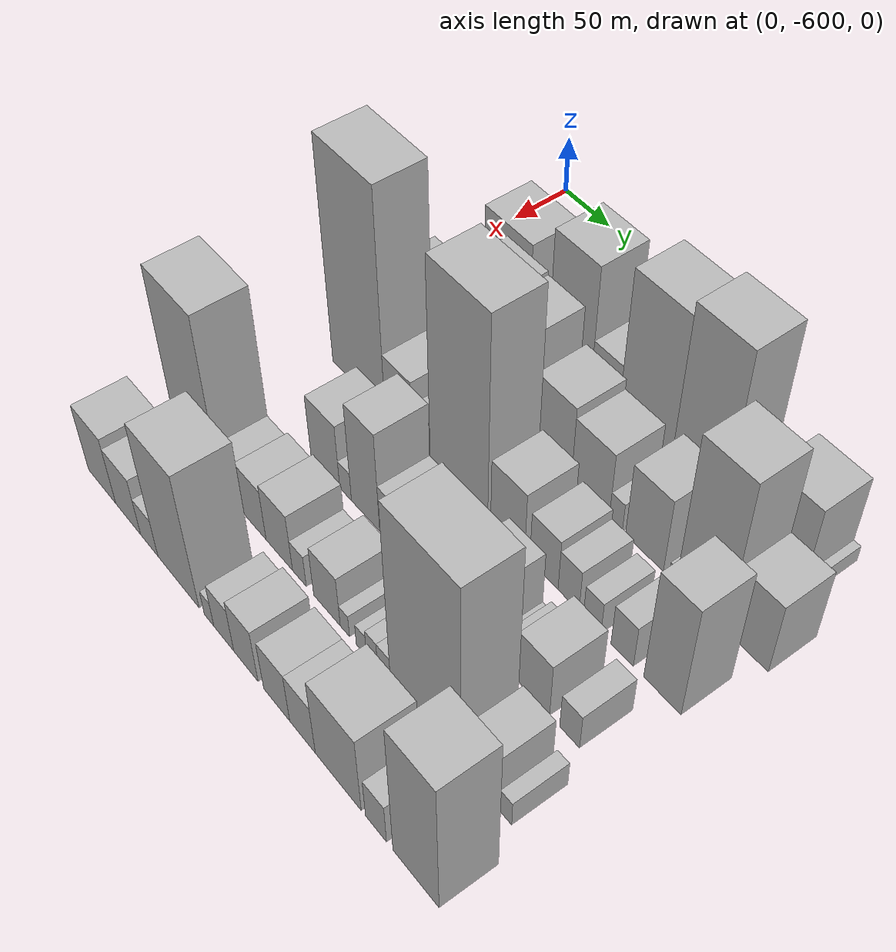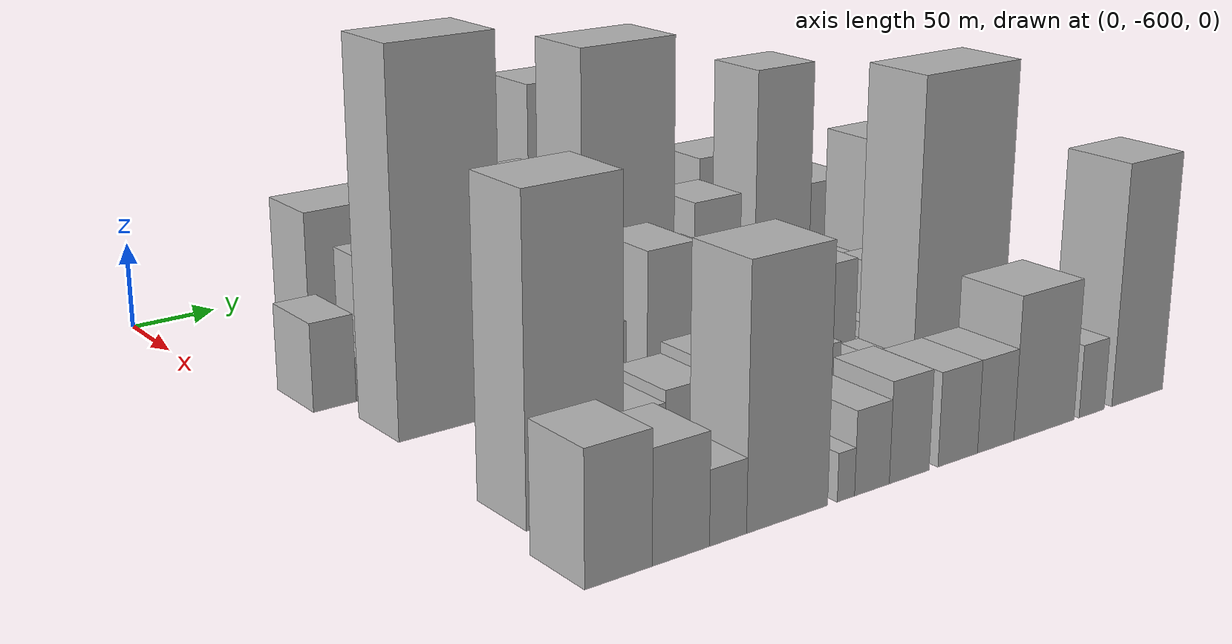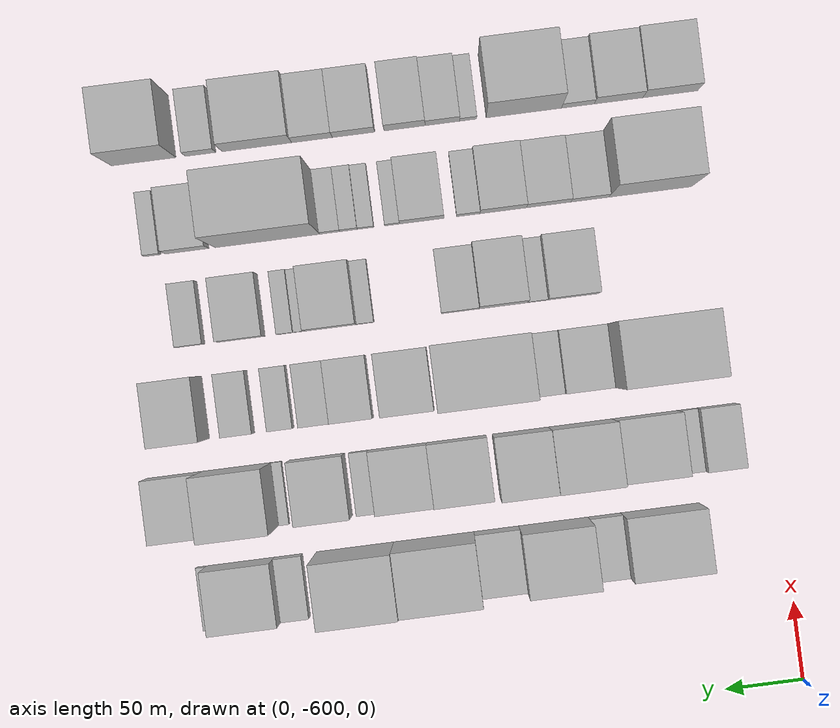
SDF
<sdf version="1.6">
 <world name="default">
  <model name="building_14">
   <static>1</static>
   <pose>100.0000 -523.1543 0 0.000000 0.000000 0.000000</pose>
   <link name="link">
    <pose>0 0 43.50 0 0 0</pose>
    <collision name="collision"><geometry><box><size>40.0000 50.3562 87.0000</size></box></geometry></collision>
    <visual name="visual">
     <cast_shadows>0</cast_shadows>
     <geometry><box><size>40.0000 50.3562 87.0000</size></box></geometry>
     <material>
      <script>
       <uri>model://HANNAS_wall/materials/scripts</uri>
       <uri>model://HANNAS_wall/materials/textures</uri>
       <name>vrc/HANNAS_wall</name>
      </script>
     </material>
    </visual>
   </link>
  </model>
  <model name="building_15">
   <static>1</static>
   <pose>100.0000 -487.5639 0 0.000000 0.000000 0.000000</pose>
   <link name="link">
    <pose>0 0 18.00 0 0 0</pose>
    <collision name="collision"><geometry><box><size>40.0000 20.8247 36.0000</size></box></geometry></collision>
    <visual name="visual">
     <cast_shadows>0</cast_shadows>
     <geometry><box><size>40.0000 20.8247 36.0000</size></box></geometry>
     <material>
      <script>
       <uri>model://HANNAS_wall/materials/scripts</uri>
       <uri>model://HANNAS_wall/materials/textures</uri>
       <name>vrc/HANNAS_wall</name>
      </script>
     </material>
    </visual>
   </link>
  </model>
  <model name="building_16">
   <static>1</static>
   <pose>100.0000 -454.9378 0 0.000000 0.000000 0.000000</pose>
   <link name="link">
    <pose>0 0 58.50 0 0 0</pose>
    <collision name="collision"><geometry><box><size>40.0000 44.4276 117.0000</size></box></geometry></collision>
    <visual name="visual">
     <cast_shadows>0</cast_shadows>
     <geometry><box><size>40.0000 44.4276 117.0000</size></box></geometry>
     <material>
      <script>
       <uri>model://HANNAS_wall/materials/scripts</uri>
       <uri>model://HANNAS_wall/materials/textures</uri>
       <name>vrc/HANNAS_wall</name>
      </script>
     </material>
    </visual>
   </link>
  </model>
  <model name="building_17">
   <static>1</static>
   <pose>100.0000 -418.4391 0 0.000000 0.000000 0.000000</pose>
   <link name="link">
    <pose>0 0 25.50 0 0 0</pose>
    <collision name="collision"><geometry><box><size>40.0000 28.5699 51.0000</size></box></geometry></collision>
    <visual name="visual">
     <cast_shadows>0</cast_shadows>
     <geometry><box><size>40.0000 28.5699 51.0000</size></box></geometry>
     <material>
      <script>
       <uri>model://HANNAS_wall/materials/scripts</uri>
       <uri>model://HANNAS_wall/materials/textures</uri>
       <name>vrc/HANNAS_wall</name>
      </script>
     </material>
    </visual>
   </link>
  </model>
  <model name="building_18">
   <static>1</static>
   <pose>100.0000 -378.4617 0 0.000000 0.000000 0.000000</pose>
   <link name="link">
    <pose>0 0 69.00 0 0 0</pose>
    <collision name="collision"><geometry><box><size>40.0000 51.3850 138.0000</size></box></geometry></collision>
    <visual name="visual">
     <cast_shadows>0</cast_shadows>
     <geometry><box><size>40.0000 51.3850 138.0000</size></box></geometry>
     <material>
      <script>
       <uri>model://HANNAS_wall/materials/scripts</uri>
       <uri>model://HANNAS_wall/materials/textures</uri>
       <name>vrc/HANNAS_wall</name>
      </script>
     </material>
    </visual>
   </link>
  </model>
  <model name="building_19">
   <static>1</static>
   <pose>100.0000 -328.0284 0 0.000000 0.000000 0.000000</pose>
   <link name="link">
    <pose>0 0 75.00 0 0 0</pose>
    <collision name="collision"><geometry><box><size>40.0000 49.4816 150.0000</size></box></geometry></collision>
    <visual name="visual">
     <cast_shadows>0</cast_shadows>
     <geometry><box><size>40.0000 49.4816 150.0000</size></box></geometry>
     <material>
      <script>
       <uri>model://HANNAS_wall/materials/scripts</uri>
       <uri>model://HANNAS_wall/materials/textures</uri>
       <name>vrc/HANNAS_wall</name>
      </script>
     </material>
    </visual>
   </link>
  </model>
  <model name="building_20">
   <static>1</static>
   <pose>100.0000 -285.3408 0 0.000000 0.000000 0.000000</pose>
   <link name="link">
    <pose>0 0 15.00 0 0 0</pose>
    <collision name="collision"><geometry><box><size>40.0000 17.8934 30.0000</size></box></geometry></collision>
    <visual name="visual">
     <cast_shadows>0</cast_shadows>
     <geometry><box><size>40.0000 17.8934 30.0000</size></box></geometry>
     <material>
      <script>
       <uri>model://HANNAS_wall/materials/scripts</uri>
       <uri>model://HANNAS_wall/materials/textures</uri>
       <name>vrc/HANNAS_wall</name>
      </script>
     </material>
    </visual>
   </link>
  </model>
  <model name="building_21">
   <static>1</static>
   <pose>100.0000 -254.5551 0 0.000000 0.000000 0.000000</pose>
   <link name="link">
    <pose>0 0 37.50 0 0 0</pose>
    <collision name="collision"><geometry><box><size>40.0000 43.6780 75.0000</size></box></geometry></collision>
    <visual name="visual">
     <cast_shadows>0</cast_shadows>
     <geometry><box><size>40.0000 43.6780 75.0000</size></box></geometry>
     <material>
      <script>
       <uri>model://HANNAS_wall/materials/scripts</uri>
       <uri>model://HANNAS_wall/materials/textures</uri>
       <name>vrc/HANNAS_wall</name>
      </script>
     </material>
    </visual>
   </link>
  </model>
  <model name="building_22">
   <static>1</static>
   <pose>100.0000 -229.6070 0 0.000000 0.000000 0.000000</pose>
   <link name="link">
    <pose>0 0 7.50 0 0 0</pose>
    <collision name="collision"><geometry><box><size>40.0000 6.2183 15.0000</size></box></geometry></collision>
    <visual name="visual">
     <cast_shadows>0</cast_shadows>
     <geometry><box><size>40.0000 6.2183 15.0000</size></box></geometry>
     <material>
      <script>
       <uri>model://HANNAS_wall/materials/scripts</uri>
       <uri>model://HANNAS_wall/materials/textures</uri>
       <name>vrc/HANNAS_wall</name>
      </script>
     </material>
    </visual>
   </link>
  </model>
  <model name="building_63">
   <static>1</static>
   <pose>160.0000 -566.2670 0 0.000000 0.000000 0.000000</pose>
   <link name="link">
    <pose>0 0 24.00 0 0 0</pose>
    <collision name="collision"><geometry><box><size>40.0000 24.8563 48.0000</size></box></geometry></collision>
    <visual name="visual">
     <cast_shadows>0</cast_shadows>
     <geometry><box><size>40.0000 24.8563 48.0000</size></box></geometry>
     <material>
      <script>
       <uri>model://HANNAS_wall/materials/scripts</uri>
       <uri>model://HANNAS_wall/materials/textures</uri>
       <name>vrc/HANNAS_wall</name>
      </script>
     </material>
    </visual>
   </link>
  </model>
  <model name="building_64">
   <static>1</static>
   <pose>160.0000 -547.9130 0 0.000000 0.000000 0.000000</pose>
   <link name="link">
    <pose>0 0 12.00 0 0 0</pose>
    <collision name="collision"><geometry><box><size>40.0000 11.8517 24.0000</size></box></geometry></collision>
    <visual name="visual">
     <cast_shadows>0</cast_shadows>
     <geometry><box><size>40.0000 11.8517 24.0000</size></box></geometry>
     <material>
      <script>
       <uri>model://HANNAS_wall/materials/scripts</uri>
       <uri>model://HANNAS_wall/materials/textures</uri>
       <name>vrc/HANNAS_wall</name>
      </script>
     </material>
    </visual>
   </link>
  </model>
  <model name="building_65">
   <static>1</static>
   <pose>160.0000 -521.0519 0 0.000000 0.000000 0.000000</pose>
   <link name="link">
    <pose>0 0 36.00 0 0 0</pose>
    <collision name="collision"><geometry><box><size>40.0000 41.8705 72.0000</size></box></geometry></collision>
    <visual name="visual">
     <cast_shadows>0</cast_shadows>
     <geometry><box><size>40.0000 41.8705 72.0000</size></box></geometry>
     <material>
      <script>
       <uri>model://HANNAS_wall/materials/scripts</uri>
       <uri>model://HANNAS_wall/materials/textures</uri>
       <name>vrc/HANNAS_wall</name>
      </script>
     </material>
    </visual>
   </link>
  </model>
  <model name="building_66">
   <static>1</static>
   <pose>160.0000 -479.6305 0 0.000000 0.000000 0.000000</pose>
   <link name="link">
    <pose>0 0 52.50 0 0 0</pose>
    <collision name="collision"><geometry><box><size>40.0000 40.9723 105.0000</size></box></geometry></collision>
    <visual name="visual">
     <cast_shadows>0</cast_shadows>
     <geometry><box><size>40.0000 40.9723 105.0000</size></box></geometry>
     <material>
      <script>
       <uri>model://HANNAS_wall/materials/scripts</uri>
       <uri>model://HANNAS_wall/materials/textures</uri>
       <name>vrc/HANNAS_wall</name>
      </script>
     </material>
    </visual>
   </link>
  </model>
  <model name="building_67">
   <static>1</static>
   <pose>160.0000 -441.2628 0 0.000000 0.000000 0.000000</pose>
   <link name="link">
    <pose>0 0 51.00 0 0 0</pose>
    <collision name="collision"><geometry><box><size>40.0000 35.7630 102.0000</size></box></geometry></collision>
    <visual name="visual">
     <cast_shadows>0</cast_shadows>
     <geometry><box><size>40.0000 35.7630 102.0000</size></box></geometry>
     <material>
      <script>
       <uri>model://HANNAS_wall/materials/scripts</uri>
       <uri>model://HANNAS_wall/materials/textures</uri>
       <name>vrc/HANNAS_wall</name>
      </script>
     </material>
    </visual>
   </link>
  </model>
  <model name="building_68">
   <static>1</static>
   <pose>160.0000 -400.4322 0 0.000000 0.000000 0.000000</pose>
   <link name="link">
    <pose>0 0 36.00 0 0 0</pose>
    <collision name="collision"><geometry><box><size>40.0000 37.8983 72.0000</size></box></geometry></collision>
    <visual name="visual">
     <cast_shadows>0</cast_shadows>
     <geometry><box><size>40.0000 37.8983 72.0000</size></box></geometry>
     <material>
      <script>
       <uri>model://HANNAS_wall/materials/scripts</uri>
       <uri>model://HANNAS_wall/materials/textures</uri>
       <name>vrc/HANNAS_wall</name>
      </script>
     </material>
    </visual>
   </link>
  </model>
  <model name="building_69">
   <static>1</static>
   <pose>160.0000 -362.9718 0 0.000000 0.000000 0.000000</pose>
   <link name="link">
    <pose>0 0 31.50 0 0 0</pose>
    <collision name="collision"><geometry><box><size>40.0000 37.0224 63.0000</size></box></geometry></collision>
    <visual name="visual">
     <cast_shadows>0</cast_shadows>
     <geometry><box><size>40.0000 37.0224 63.0000</size></box></geometry>
     <material>
      <script>
       <uri>model://HANNAS_wall/materials/scripts</uri>
       <uri>model://HANNAS_wall/materials/textures</uri>
       <name>vrc/HANNAS_wall</name>
      </script>
     </material>
    </visual>
   </link>
  </model>
  <model name="building_70">
   <static>1</static>
   <pose>160.0000 -338.1974 0 0.000000 0.000000 0.000000</pose>
   <link name="link">
    <pose>0 0 13.50 0 0 0</pose>
    <collision name="collision"><geometry><box><size>40.0000 12.5265 27.0000</size></box></geometry></collision>
    <visual name="visual">
     <cast_shadows>0</cast_shadows>
     <geometry><box><size>40.0000 12.5265 27.0000</size></box></geometry>
     <material>
      <script>
       <uri>model://HANNAS_wall/materials/scripts</uri>
       <uri>model://HANNAS_wall/materials/textures</uri>
       <name>vrc/HANNAS_wall</name>
      </script>
     </material>
    </visual>
   </link>
  </model>
  <model name="building_71">
   <static>1</static>
   <pose>160.0000 -311.3431 0 0.000000 0.000000 0.000000</pose>
   <link name="link">
    <pose>0 0 34.50 0 0 0</pose>
    <collision name="collision"><geometry><box><size>40.0000 35.1821 69.0000</size></box></geometry></collision>
    <visual name="visual">
     <cast_shadows>0</cast_shadows>
     <geometry><box><size>40.0000 35.1821 69.0000</size></box></geometry>
     <material>
      <script>
       <uri>model://HANNAS_wall/materials/scripts</uri>
       <uri>model://HANNAS_wall/materials/textures</uri>
       <name>vrc/HANNAS_wall</name>
      </script>
     </material>
    </visual>
   </link>
  </model>
  <model name="building_72">
   <static>1</static>
   <pose>160.0000 -285.5102 0 0.000000 0.000000 0.000000</pose>
   <link name="link">
    <pose>0 0 7.50 0 0 0</pose>
    <collision name="collision"><geometry><box><size>40.0000 6.4837 15.0000</size></box></geometry></collision>
    <visual name="visual">
     <cast_shadows>0</cast_shadows>
     <geometry><box><size>40.0000 6.4837 15.0000</size></box></geometry>
     <material>
      <script>
       <uri>model://HANNAS_wall/materials/scripts</uri>
       <uri>model://HANNAS_wall/materials/textures</uri>
       <name>vrc/HANNAS_wall</name>
      </script>
     </material>
    </visual>
   </link>
  </model>
  <model name="building_73">
   <static>1</static>
   <pose>160.0000 -260.2073 0 0.000000 0.000000 0.000000</pose>
   <link name="link">
    <pose>0 0 70.50 0 0 0</pose>
    <collision name="collision"><geometry><box><size>40.0000 44.1222 141.0000</size></box></geometry></collision>
    <visual name="visual">
     <cast_shadows>0</cast_shadows>
     <geometry><box><size>40.0000 44.1222 141.0000</size></box></geometry>
     <material>
      <script>
       <uri>model://HANNAS_wall/materials/scripts</uri>
       <uri>model://HANNAS_wall/materials/textures</uri>
       <name>vrc/HANNAS_wall</name>
      </script>
     </material>
    </visual>
   </link>
  </model>
  <model name="building_74">
   <static>1</static>
   <pose>160.0000 -220.4132 0 0.000000 0.000000 0.000000</pose>
   <link name="link">
    <pose>0 0 33.00 0 0 0</pose>
    <collision name="collision"><geometry><box><size>40.0000 35.4659 66.0000</size></box></geometry></collision>
    <visual name="visual">
     <cast_shadows>0</cast_shadows>
     <geometry><box><size>40.0000 35.4659 66.0000</size></box></geometry>
     <material>
      <script>
       <uri>model://HANNAS_wall/materials/scripts</uri>
       <uri>model://HANNAS_wall/materials/textures</uri>
       <name>vrc/HANNAS_wall</name>
      </script>
     </material>
    </visual>
   </link>
  </model>
  <model name="building_120">
   <static>1</static>
   <pose>220.0000 -533.1363 0 0.000000 0.000000 0.000000</pose>
   <link name="link">
    <pose>0 0 99.00 0 0 0</pose>
    <collision name="collision"><geometry><box><size>40.0000 60.9064 198.0000</size></box></geometry></collision>
    <visual name="visual">
     <cast_shadows>0</cast_shadows>
     <geometry><box><size>40.0000 60.9064 198.0000</size></box></geometry>
     <material>
      <script>
       <uri>model://HANNAS_wall/materials/scripts</uri>
       <uri>model://HANNAS_wall/materials/textures</uri>
       <name>vrc/HANNAS_wall</name>
      </script>
     </material>
    </visual>
   </link>
  </model>
  <model name="building_121">
   <static>1</static>
   <pose>220.0000 -487.3544 0 0.000000 0.000000 0.000000</pose>
   <link name="link">
    <pose>0 0 28.50 0 0 0</pose>
    <collision name="collision"><geometry><box><size>40.0000 30.6576 57.0000</size></box></geometry></collision>
    <visual name="visual">
     <cast_shadows>0</cast_shadows>
     <geometry><box><size>40.0000 30.6576 57.0000</size></box></geometry>
     <material>
      <script>
       <uri>model://HANNAS_wall/materials/scripts</uri>
       <uri>model://HANNAS_wall/materials/textures</uri>
       <name>vrc/HANNAS_wall</name>
      </script>
     </material>
    </visual>
   </link>
  </model>
  <model name="building_122">
   <static>1</static>
   <pose>220.0000 -462.1849 0 0.000000 0.000000 0.000000</pose>
   <link name="link">
    <pose>0 0 18.00 0 0 0</pose>
    <collision name="collision"><geometry><box><size>40.0000 19.6813 36.0000</size></box></geometry></collision>
    <visual name="visual">
     <cast_shadows>0</cast_shadows>
     <geometry><box><size>40.0000 19.6813 36.0000</size></box></geometry>
     <material>
      <script>
       <uri>model://HANNAS_wall/materials/scripts</uri>
       <uri>model://HANNAS_wall/materials/textures</uri>
       <name>vrc/HANNAS_wall</name>
      </script>
     </material>
    </visual>
   </link>
  </model>
  <model name="building_123">
   <static>1</static>
   <pose>220.0000 -422.1868 0 0.000000 0.000000 0.000000</pose>
   <link name="link">
    <pose>0 0 91.50 0 0 0</pose>
    <collision name="collision"><geometry><box><size>40.0000 60.3148 183.0000</size></box></geometry></collision>
    <visual name="visual">
     <cast_shadows>0</cast_shadows>
     <geometry><box><size>40.0000 60.3148 183.0000</size></box></geometry>
     <material>
      <script>
       <uri>model://HANNAS_wall/materials/scripts</uri>
       <uri>model://HANNAS_wall/materials/textures</uri>
       <name>vrc/HANNAS_wall</name>
      </script>
     </material>
    </visual>
   </link>
  </model>
  <model name="building_124">
   <static>1</static>
   <pose>220.0000 -372.0674 0 0.000000 0.000000 0.000000</pose>
   <link name="link">
    <pose>0 0 30.00 0 0 0</pose>
    <collision name="collision"><geometry><box><size>40.0000 33.9240 60.0000</size></box></geometry></collision>
    <visual name="visual">
     <cast_shadows>0</cast_shadows>
     <geometry><box><size>40.0000 33.9240 60.0000</size></box></geometry>
     <material>
      <script>
       <uri>model://HANNAS_wall/materials/scripts</uri>
       <uri>model://HANNAS_wall/materials/textures</uri>
       <name>vrc/HANNAS_wall</name>
      </script>
     </material>
    </visual>
   </link>
  </model>
  <model name="building_125">
   <static>1</static>
   <pose>220.0000 -336.4881 0 0.000000 0.000000 0.000000</pose>
   <link name="link">
    <pose>0 0 24.00 0 0 0</pose>
    <collision name="collision"><geometry><box><size>40.0000 27.2346 48.0000</size></box></geometry></collision>
    <visual name="visual">
     <cast_shadows>0</cast_shadows>
     <geometry><box><size>40.0000 27.2346 48.0000</size></box></geometry>
     <material>
      <script>
       <uri>model://HANNAS_wall/materials/scripts</uri>
       <uri>model://HANNAS_wall/materials/textures</uri>
       <name>vrc/HANNAS_wall</name>
      </script>
     </material>
    </visual>
   </link>
  </model>
  <model name="building_126">
   <static>1</static>
   <pose>220.0000 -313.0088 0 0.000000 0.000000 0.000000</pose>
   <link name="link">
    <pose>0 0 19.50 0 0 0</pose>
    <collision name="collision"><geometry><box><size>40.0000 19.7241 39.0000</size></box></geometry></collision>
    <visual name="visual">
     <cast_shadows>0</cast_shadows>
     <geometry><box><size>40.0000 19.7241 39.0000</size></box></geometry>
     <material>
      <script>
       <uri>model://HANNAS_wall/materials/scripts</uri>
       <uri>model://HANNAS_wall/materials/textures</uri>
       <name>vrc/HANNAS_wall</name>
      </script>
     </material>
    </visual>
   </link>
  </model>
  <model name="building_127">
   <static>1</static>
   <pose>220.0000 -291.0469 0 0.000000 0.000000 0.000000</pose>
   <link name="link">
    <pose>0 0 15.00 0 0 0</pose>
    <collision name="collision"><geometry><box><size>40.0000 16.1997 30.0000</size></box></geometry></collision>
    <visual name="visual">
     <cast_shadows>0</cast_shadows>
     <geometry><box><size>40.0000 16.1997 30.0000</size></box></geometry>
     <material>
      <script>
       <uri>model://HANNAS_wall/materials/scripts</uri>
       <uri>model://HANNAS_wall/materials/textures</uri>
       <name>vrc/HANNAS_wall</name>
      </script>
     </material>
    </visual>
   </link>
  </model>
  <model name="building_128">
   <static>1</static>
   <pose>220.0000 -263.9473 0 0.000000 0.000000 0.000000</pose>
   <link name="link">
    <pose>0 0 19.50 0 0 0</pose>
    <collision name="collision"><geometry><box><size>40.0000 19.9994 39.0000</size></box></geometry></collision>
    <visual name="visual">
     <cast_shadows>0</cast_shadows>
     <geometry><box><size>40.0000 19.9994 39.0000</size></box></geometry>
     <material>
      <script>
       <uri>model://HANNAS_wall/materials/scripts</uri>
       <uri>model://HANNAS_wall/materials/textures</uri>
       <name>vrc/HANNAS_wall</name>
      </script>
     </material>
    </visual>
   </link>
  </model>
  <model name="building_129">
   <static>1</static>
   <pose>220.0000 -228.8766 0 0.000000 0.000000 0.000000</pose>
   <link name="link">
    <pose>0 0 52.50 0 0 0</pose>
    <collision name="collision"><geometry><box><size>40.0000 32.1422 105.0000</size></box></geometry></collision>
    <visual name="visual">
     <cast_shadows>0</cast_shadows>
     <geometry><box><size>40.0000 32.1422 105.0000</size></box></geometry>
     <material>
      <script>
       <uri>model://HANNAS_wall/materials/scripts</uri>
       <uri>model://HANNAS_wall/materials/textures</uri>
       <name>vrc/HANNAS_wall</name>
      </script>
     </material>
    </visual>
   </link>
  </model>
  <model name="building_172">
   <static>1</static>
   <pose>280.0000 -485.3531 0 0.000000 0.000000 0.000000</pose>
   <link name="link">
    <pose>0 0 30.00 0 0 0</pose>
    <collision name="collision"><geometry><box><size>40.0000 32.6565 60.0000</size></box></geometry></collision>
    <visual name="visual">
     <cast_shadows>0</cast_shadows>
     <geometry><box><size>40.0000 32.6565 60.0000</size></box></geometry>
     <material>
      <script>
       <uri>model://HANNAS_wall/materials/scripts</uri>
       <uri>model://HANNAS_wall/materials/textures</uri>
       <name>vrc/HANNAS_wall</name>
      </script>
     </material>
    </visual>
   </link>
  </model>
  <model name="building_173">
   <static>1</static>
   <pose>280.0000 -462.5455 0 0.000000 0.000000 0.000000</pose>
   <link name="link">
    <pose>0 0 13.50 0 0 0</pose>
    <collision name="collision"><geometry><box><size>40.0000 12.9587 27.0000</size></box></geometry></collision>
    <visual name="visual">
     <cast_shadows>0</cast_shadows>
     <geometry><box><size>40.0000 12.9587 27.0000</size></box></geometry>
     <material>
      <script>
       <uri>model://HANNAS_wall/materials/scripts</uri>
       <uri>model://HANNAS_wall/materials/textures</uri>
       <name>vrc/HANNAS_wall</name>
      </script>
     </material>
    </visual>
   </link>
  </model>
  <model name="building_174">
   <static>1</static>
   <pose>280.0000 -440.6947 0 0.000000 0.000000 0.000000</pose>
   <link name="link">
    <pose>0 0 46.50 0 0 0</pose>
    <collision name="collision"><geometry><box><size>40.0000 30.7430 93.0000</size></box></geometry></collision>
    <visual name="visual">
     <cast_shadows>0</cast_shadows>
     <geometry><box><size>40.0000 30.7430 93.0000</size></box></geometry>
     <material>
      <script>
       <uri>model://HANNAS_wall/materials/scripts</uri>
       <uri>model://HANNAS_wall/materials/textures</uri>
       <name>vrc/HANNAS_wall</name>
      </script>
     </material>
    </visual>
   </link>
  </model>
  <model name="building_175">
   <static>1</static>
   <pose>280.0000 -413.2884 0 0.000000 0.000000 0.000000</pose>
   <link name="link">
    <pose>0 0 22.50 0 0 0</pose>
    <collision name="collision"><geometry><box><size>40.0000 24.0695 45.0000</size></box></geometry></collision>
    <visual name="visual">
     <cast_shadows>0</cast_shadows>
     <geometry><box><size>40.0000 24.0695 45.0000</size></box></geometry>
     <material>
      <script>
       <uri>model://HANNAS_wall/materials/scripts</uri>
       <uri>model://HANNAS_wall/materials/textures</uri>
       <name>vrc/HANNAS_wall</name>
      </script>
     </material>
    </visual>
   </link>
  </model>
  <model name="building_176">
   <static>1</static>
   <pose>280.0000 -352.7139 0 0.000000 0.000000 0.000000</pose>
   <link name="link">
    <pose>0 0 12.00 0 0 0</pose>
    <collision name="collision"><geometry><box><size>40.0000 11.0265 24.0000</size></box></geometry></collision>
    <visual name="visual">
     <cast_shadows>0</cast_shadows>
     <geometry><box><size>40.0000 11.0265 24.0000</size></box></geometry>
     <material>
      <script>
       <uri>model://HANNAS_wall/materials/scripts</uri>
       <uri>model://HANNAS_wall/materials/textures</uri>
       <name>vrc/HANNAS_wall</name>
      </script>
     </material>
    </visual>
   </link>
  </model>
  <model name="building_177">
   <static>1</static>
   <pose>280.0000 -330.6529 0 0.000000 0.000000 0.000000</pose>
   <link name="link">
    <pose>0 0 31.50 0 0 0</pose>
    <collision name="collision"><geometry><box><size>40.0000 33.0956 63.0000</size></box></geometry></collision>
    <visual name="visual">
     <cast_shadows>0</cast_shadows>
     <geometry><box><size>40.0000 33.0956 63.0000</size></box></geometry>
     <material>
      <script>
       <uri>model://HANNAS_wall/materials/scripts</uri>
       <uri>model://HANNAS_wall/materials/textures</uri>
       <name>vrc/HANNAS_wall</name>
      </script>
     </material>
    </visual>
   </link>
  </model>
  <model name="building_178">
   <static>1</static>
   <pose>280.0000 -310.3784 0 0.000000 0.000000 0.000000</pose>
   <link name="link">
    <pose>0 0 7.50 0 0 0</pose>
    <collision name="collision"><geometry><box><size>40.0000 7.4534 15.0000</size></box></geometry></collision>
    <visual name="visual">
     <cast_shadows>0</cast_shadows>
     <geometry><box><size>40.0000 7.4534 15.0000</size></box></geometry>
     <material>
      <script>
       <uri>model://HANNAS_wall/materials/scripts</uri>
       <uri>model://HANNAS_wall/materials/textures</uri>
       <name>vrc/HANNAS_wall</name>
      </script>
     </material>
    </visual>
   </link>
  </model>
  <model name="building_179">
   <static>1</static>
   <pose>280.0000 -301.4549 0 0.000000 0.000000 0.000000</pose>
   <link name="link">
    <pose>0 0 12.00 0 0 0</pose>
    <collision name="collision"><geometry><box><size>40.0000 10.3938 24.0000</size></box></geometry></collision>
    <visual name="visual">
     <cast_shadows>0</cast_shadows>
     <geometry><box><size>40.0000 10.3938 24.0000</size></box></geometry>
     <material>
      <script>
       <uri>model://HANNAS_wall/materials/scripts</uri>
       <uri>model://HANNAS_wall/materials/textures</uri>
       <name>vrc/HANNAS_wall</name>
      </script>
     </material>
    </visual>
   </link>
  </model>
  <model name="building_180">
   <static>1</static>
   <pose>280.0000 -273.4605 0 0.000000 0.000000 0.000000</pose>
   <link name="link">
    <pose>0 0 25.50 0 0 0</pose>
    <collision name="collision"><geometry><box><size>40.0000 29.5950 51.0000</size></box></geometry></collision>
    <visual name="visual">
     <cast_shadows>0</cast_shadows>
     <geometry><box><size>40.0000 29.5950 51.0000</size></box></geometry>
     <material>
      <script>
       <uri>model://HANNAS_wall/materials/scripts</uri>
       <uri>model://HANNAS_wall/materials/textures</uri>
       <name>vrc/HANNAS_wall</name>
      </script>
     </material>
    </visual>
   </link>
  </model>
  <model name="building_181">
   <static>1</static>
   <pose>280.0000 -240.8980 0 0.000000 0.000000 0.000000</pose>
   <link name="link">
    <pose>0 0 16.50 0 0 0</pose>
    <collision name="collision"><geometry><box><size>40.0000 17.5299 33.0000</size></box></geometry></collision>
    <visual name="visual">
     <cast_shadows>0</cast_shadows>
     <geometry><box><size>40.0000 17.5299 33.0000</size></box></geometry>
     <material>
      <script>
       <uri>model://HANNAS_wall/materials/scripts</uri>
       <uri>model://HANNAS_wall/materials/textures</uri>
       <name>vrc/HANNAS_wall</name>
      </script>
     </material>
    </visual>
   </link>
  </model>
  <model name="building_230">
   <static>1</static>
   <pose>340.0000 -542.6655 0 0.000000 0.000000 0.000000</pose>
   <link name="link">
    <pose>0 0 78.00 0 0 0</pose>
    <collision name="collision"><geometry><box><size>40.0000 53.2601 156.0000</size></box></geometry></collision>
    <visual name="visual">
     <cast_shadows>0</cast_shadows>
     <geometry><box><size>40.0000 53.2601 156.0000</size></box></geometry>
     <material>
      <script>
       <uri>model://HANNAS_wall/materials/scripts</uri>
       <uri>model://HANNAS_wall/materials/textures</uri>
       <name>vrc/HANNAS_wall</name>
      </script>
     </material>
    </visual>
   </link>
  </model>
  <model name="building_231">
   <static>1</static>
   <pose>340.0000 -503.9489 0 0.000000 0.000000 0.000000</pose>
   <link name="link">
    <pose>0 0 21.00 0 0 0</pose>
    <collision name="collision"><geometry><box><size>40.0000 24.1731 42.0000</size></box></geometry></collision>
    <visual name="visual">
     <cast_shadows>0</cast_shadows>
     <geometry><box><size>40.0000 24.1731 42.0000</size></box></geometry>
     <material>
      <script>
       <uri>model://HANNAS_wall/materials/scripts</uri>
       <uri>model://HANNAS_wall/materials/textures</uri>
       <name>vrc/HANNAS_wall</name>
      </script>
     </material>
    </visual>
   </link>
  </model>
  <model name="building_232">
   <static>1</static>
   <pose>340.0000 -477.6029 0 0.000000 0.000000 0.000000</pose>
   <link name="link">
    <pose>0 0 24.00 0 0 0</pose>
    <collision name="collision"><geometry><box><size>40.0000 28.5190 48.0000</size></box></geometry></collision>
    <visual name="visual">
     <cast_shadows>0</cast_shadows>
     <geometry><box><size>40.0000 28.5190 48.0000</size></box></geometry>
     <material>
      <script>
       <uri>model://HANNAS_wall/materials/scripts</uri>
       <uri>model://HANNAS_wall/materials/textures</uri>
       <name>vrc/HANNAS_wall</name>
      </script>
     </material>
    </visual>
   </link>
  </model>
  <model name="building_233">
   <static>1</static>
   <pose>340.0000 -448.5097 0 0.000000 0.000000 0.000000</pose>
   <link name="link">
    <pose>0 0 27.00 0 0 0</pose>
    <collision name="collision"><geometry><box><size>40.0000 29.6673 54.0000</size></box></geometry></collision>
    <visual name="visual">
     <cast_shadows>0</cast_shadows>
     <geometry><box><size>40.0000 29.6673 54.0000</size></box></geometry>
     <material>
      <script>
       <uri>model://HANNAS_wall/materials/scripts</uri>
       <uri>model://HANNAS_wall/materials/textures</uri>
       <name>vrc/HANNAS_wall</name>
      </script>
     </material>
    </visual>
   </link>
  </model>
  <model name="building_234">
   <static>1</static>
   <pose>340.0000 -426.1366 0 0.000000 0.000000 0.000000</pose>
   <link name="link">
    <pose>0 0 15.00 0 0 0</pose>
    <collision name="collision"><geometry><box><size>40.0000 15.0789 30.0000</size></box></geometry></collision>
    <visual name="visual">
     <cast_shadows>0</cast_shadows>
     <geometry><box><size>40.0000 15.0789 30.0000</size></box></geometry>
     <material>
      <script>
       <uri>model://HANNAS_wall/materials/scripts</uri>
       <uri>model://HANNAS_wall/materials/textures</uri>
       <name>vrc/HANNAS_wall</name>
      </script>
     </material>
    </visual>
   </link>
  </model>
  <model name="building_235">
   <static>1</static>
   <pose>340.0000 -396.4798 0 0.000000 0.000000 0.000000</pose>
   <link name="link">
    <pose>0 0 24.00 0 0 0</pose>
    <collision name="collision"><geometry><box><size>40.0000 28.2348 48.0000</size></box></geometry></collision>
    <visual name="visual">
     <cast_shadows>0</cast_shadows>
     <geometry><box><size>40.0000 28.2348 48.0000</size></box></geometry>
     <material>
      <script>
       <uri>model://HANNAS_wall/materials/scripts</uri>
       <uri>model://HANNAS_wall/materials/textures</uri>
       <name>vrc/HANNAS_wall</name>
      </script>
     </material>
    </visual>
   </link>
  </model>
  <model name="building_236">
   <static>1</static>
   <pose>340.0000 -377.5455 0 0.000000 0.000000 0.000000</pose>
   <link name="link">
    <pose>0 0 10.50 0 0 0</pose>
    <collision name="collision"><geometry><box><size>40.0000 9.6337 21.0000</size></box></geometry></collision>
    <visual name="visual">
     <cast_shadows>0</cast_shadows>
     <geometry><box><size>40.0000 9.6337 21.0000</size></box></geometry>
     <material>
      <script>
       <uri>model://HANNAS_wall/materials/scripts</uri>
       <uri>model://HANNAS_wall/materials/textures</uri>
       <name>vrc/HANNAS_wall</name>
      </script>
     </material>
    </visual>
   </link>
  </model>
  <model name="building_237">
   <static>1</static>
   <pose>340.0000 -360.4964 0 0.000000 0.000000 0.000000</pose>
   <link name="link">
    <pose>0 0 10.50 0 0 0</pose>
    <collision name="collision"><geometry><box><size>40.0000 10.4646 21.0000</size></box></geometry></collision>
    <visual name="visual">
     <cast_shadows>0</cast_shadows>
     <geometry><box><size>40.0000 10.4646 21.0000</size></box></geometry>
     <material>
      <script>
       <uri>model://HANNAS_wall/materials/scripts</uri>
       <uri>model://HANNAS_wall/materials/textures</uri>
       <name>vrc/HANNAS_wall</name>
      </script>
     </material>
    </visual>
   </link>
  </model>
  <model name="building_238">
   <static>1</static>
   <pose>340.0000 -349.6443 0 0.000000 0.000000 0.000000</pose>
   <link name="link">
    <pose>0 0 13.50 0 0 0</pose>
    <collision name="collision"><geometry><box><size>40.0000 11.2396 27.0000</size></box></geometry></collision>
    <visual name="visual">
     <cast_shadows>0</cast_shadows>
     <geometry><box><size>40.0000 11.2396 27.0000</size></box></geometry>
     <material>
      <script>
       <uri>model://HANNAS_wall/materials/scripts</uri>
       <uri>model://HANNAS_wall/materials/textures</uri>
       <name>vrc/HANNAS_wall</name>
      </script>
     </material>
    </visual>
   </link>
  </model>
  <model name="building_239">
   <static>1</static>
   <pose>340.0000 -337.5779 0 0.000000 0.000000 0.000000</pose>
   <link name="link">
    <pose>0 0 13.50 0 0 0</pose>
    <collision name="collision"><geometry><box><size>40.0000 12.8931 27.0000</size></box></geometry></collision>
    <visual name="visual">
     <cast_shadows>0</cast_shadows>
     <geometry><box><size>40.0000 12.8931 27.0000</size></box></geometry>
     <material>
      <script>
       <uri>model://HANNAS_wall/materials/scripts</uri>
       <uri>model://HANNAS_wall/materials/textures</uri>
       <name>vrc/HANNAS_wall</name>
      </script>
     </material>
    </visual>
   </link>
  </model>
  <model name="building_240">
   <static>1</static>
   <pose>340.0000 -297.5738 0 0.000000 0.000000 0.000000</pose>
   <link name="link">
    <pose>0 0 87.00 0 0 0</pose>
    <collision name="collision"><geometry><box><size>40.0000 67.1151 174.0000</size></box></geometry></collision>
    <visual name="visual">
     <cast_shadows>0</cast_shadows>
     <geometry><box><size>40.0000 67.1151 174.0000</size></box></geometry>
     <material>
      <script>
       <uri>model://HANNAS_wall/materials/scripts</uri>
       <uri>model://HANNAS_wall/materials/textures</uri>
       <name>vrc/HANNAS_wall</name>
      </script>
     </material>
    </visual>
   </link>
  </model>
  <model name="building_241">
   <static>1</static>
   <pose>340.0000 -246.1269 0 0.000000 0.000000 0.000000</pose>
   <link name="link">
    <pose>0 0 25.50 0 0 0</pose>
    <collision name="collision"><geometry><box><size>40.0000 27.7786 51.0000</size></box></geometry></collision>
    <visual name="visual">
     <cast_shadows>0</cast_shadows>
     <geometry><box><size>40.0000 27.7786 51.0000</size></box></geometry>
     <material>
      <script>
       <uri>model://HANNAS_wall/materials/scripts</uri>
       <uri>model://HANNAS_wall/materials/textures</uri>
       <name>vrc/HANNAS_wall</name>
      </script>
     </material>
    </visual>
   </link>
  </model>
  <model name="building_242">
   <static>1</static>
   <pose>340.0000 -223.9950 0 0.000000 0.000000 0.000000</pose>
   <link name="link">
    <pose>0 0 12.00 0 0 0</pose>
    <collision name="collision"><geometry><box><size>40.0000 10.4852 24.0000</size></box></geometry></collision>
    <visual name="visual">
     <cast_shadows>0</cast_shadows>
     <geometry><box><size>40.0000 10.4852 24.0000</size></box></geometry>
     <material>
      <script>
       <uri>model://HANNAS_wall/materials/scripts</uri>
       <uri>model://HANNAS_wall/materials/textures</uri>
       <name>vrc/HANNAS_wall</name>
      </script>
     </material>
    </visual>
   </link>
  </model>
  <model name="building_286">
   <static>1</static>
   <pose>400.0000 -563.3298 0 0.000000 0.000000 0.000000</pose>
   <link name="link">
    <pose>0 0 31.50 0 0 0</pose>
    <collision name="collision"><geometry><box><size>40.0000 35.2561 63.0000</size></box></geometry></collision>
    <visual name="visual">
     <cast_shadows>0</cast_shadows>
     <geometry><box><size>40.0000 35.2561 63.0000</size></box></geometry>
     <material>
      <script>
       <uri>model://HANNAS_wall/materials/scripts</uri>
       <uri>model://HANNAS_wall/materials/textures</uri>
       <name>vrc/HANNAS_wall</name>
      </script>
     </material>
    </visual>
   </link>
  </model>
  <model name="building_287">
   <static>1</static>
   <pose>400.0000 -530.1167 0 0.000000 0.000000 0.000000</pose>
   <link name="link">
    <pose>0 0 27.00 0 0 0</pose>
    <collision name="collision"><geometry><box><size>40.0000 31.1701 54.0000</size></box></geometry></collision>
    <visual name="visual">
     <cast_shadows>0</cast_shadows>
     <geometry><box><size>40.0000 31.1701 54.0000</size></box></geometry>
     <material>
      <script>
       <uri>model://HANNAS_wall/materials/scripts</uri>
       <uri>model://HANNAS_wall/materials/textures</uri>
       <name>vrc/HANNAS_wall</name>
      </script>
     </material>
    </visual>
   </link>
  </model>
  <model name="building_288">
   <static>1</static>
   <pose>400.0000 -504.0368 0 0.000000 0.000000 0.000000</pose>
   <link name="link">
    <pose>0 0 18.00 0 0 0</pose>
    <collision name="collision"><geometry><box><size>40.0000 20.9897 36.0000</size></box></geometry></collision>
    <visual name="visual">
     <cast_shadows>0</cast_shadows>
     <geometry><box><size>40.0000 20.9897 36.0000</size></box></geometry>
     <material>
      <script>
       <uri>model://HANNAS_wall/materials/scripts</uri>
       <uri>model://HANNAS_wall/materials/textures</uri>
       <name>vrc/HANNAS_wall</name>
      </script>
     </material>
    </visual>
   </link>
  </model>
  <model name="building_289">
   <static>1</static>
   <pose>400.0000 -469.4056 0 0.000000 0.000000 0.000000</pose>
   <link name="link">
    <pose>0 0 63.00 0 0 0</pose>
    <collision name="collision"><geometry><box><size>40.0000 48.2727 126.0000</size></box></geometry></collision>
    <visual name="visual">
     <cast_shadows>0</cast_shadows>
     <geometry><box><size>40.0000 48.2727 126.0000</size></box></geometry>
     <material>
      <script>
       <uri>model://HANNAS_wall/materials/scripts</uri>
       <uri>model://HANNAS_wall/materials/textures</uri>
       <name>vrc/HANNAS_wall</name>
      </script>
     </material>
    </visual>
   </link>
  </model>
  <model name="building_290">
   <static>1</static>
   <pose>400.0000 -433.8607 0 0.000000 0.000000 0.000000</pose>
   <link name="link">
    <pose>0 0 12.00 0 0 0</pose>
    <collision name="collision"><geometry><box><size>40.0000 10.8171 24.0000</size></box></geometry></collision>
    <visual name="visual">
     <cast_shadows>0</cast_shadows>
     <geometry><box><size>40.0000 10.8171 24.0000</size></box></geometry>
     <material>
      <script>
       <uri>model://HANNAS_wall/materials/scripts</uri>
       <uri>model://HANNAS_wall/materials/textures</uri>
       <name>vrc/HANNAS_wall</name>
      </script>
     </material>
    </visual>
   </link>
  </model>
  <model name="building_291">
   <static>1</static>
   <pose>400.0000 -417.3473 0 0.000000 0.000000 0.000000</pose>
   <link name="link">
    <pose>0 0 21.00 0 0 0</pose>
    <collision name="collision"><geometry><box><size>40.0000 22.2096 42.0000</size></box></geometry></collision>
    <visual name="visual">
     <cast_shadows>0</cast_shadows>
     <geometry><box><size>40.0000 22.2096 42.0000</size></box></geometry>
     <material>
      <script>
       <uri>model://HANNAS_wall/materials/scripts</uri>
       <uri>model://HANNAS_wall/materials/textures</uri>
       <name>vrc/HANNAS_wall</name>
      </script>
     </material>
    </visual>
   </link>
  </model>
  <model name="building_292">
   <static>1</static>
   <pose>400.0000 -393.1156 0 0.000000 0.000000 0.000000</pose>
   <link name="link">
    <pose>0 0 25.50 0 0 0</pose>
    <collision name="collision"><geometry><box><size>40.0000 26.2538 51.0000</size></box></geometry></collision>
    <visual name="visual">
     <cast_shadows>0</cast_shadows>
     <geometry><box><size>40.0000 26.2538 51.0000</size></box></geometry>
     <material>
      <script>
       <uri>model://HANNAS_wall/materials/scripts</uri>
       <uri>model://HANNAS_wall/materials/textures</uri>
       <name>vrc/HANNAS_wall</name>
      </script>
     </material>
    </visual>
   </link>
  </model>
  <model name="building_293">
   <static>1</static>
   <pose>400.0000 -360.3739 0 0.000000 0.000000 0.000000</pose>
   <link name="link">
    <pose>0 0 24.00 0 0 0</pose>
    <collision name="collision"><geometry><box><size>40.0000 27.2297 48.0000</size></box></geometry></collision>
    <visual name="visual">
     <cast_shadows>0</cast_shadows>
     <geometry><box><size>40.0000 27.2297 48.0000</size></box></geometry>
     <material>
      <script>
       <uri>model://HANNAS_wall/materials/scripts</uri>
       <uri>model://HANNAS_wall/materials/textures</uri>
       <name>vrc/HANNAS_wall</name>
      </script>
     </material>
    </visual>
   </link>
  </model>
  <model name="building_294">
   <static>1</static>
   <pose>400.0000 -333.7816 0 0.000000 0.000000 0.000000</pose>
   <link name="link">
    <pose>0 0 24.00 0 0 0</pose>
    <collision name="collision"><geometry><box><size>40.0000 25.9549 48.0000</size></box></geometry></collision>
    <visual name="visual">
     <cast_shadows>0</cast_shadows>
     <geometry><box><size>40.0000 25.9549 48.0000</size></box></geometry>
     <material>
      <script>
       <uri>model://HANNAS_wall/materials/scripts</uri>
       <uri>model://HANNAS_wall/materials/textures</uri>
       <name>vrc/HANNAS_wall</name>
      </script>
     </material>
    </visual>
   </link>
  </model>
  <model name="building_295">
   <static>1</static>
   <pose>400.0000 -298.4255 0 0.000000 0.000000 0.000000</pose>
   <link name="link">
    <pose>0 0 37.50 0 0 0</pose>
    <collision name="collision"><geometry><box><size>40.0000 44.7571 75.0000</size></box></geometry></collision>
    <visual name="visual">
     <cast_shadows>0</cast_shadows>
     <geometry><box><size>40.0000 44.7571 75.0000</size></box></geometry>
     <material>
      <script>
       <uri>model://HANNAS_wall/materials/scripts</uri>
       <uri>model://HANNAS_wall/materials/textures</uri>
       <name>vrc/HANNAS_wall</name>
      </script>
     </material>
    </visual>
   </link>
  </model>
  <model name="building_296">
   <static>1</static>
   <pose>400.0000 -262.2565 0 0.000000 0.000000 0.000000</pose>
   <link name="link">
    <pose>0 0 19.50 0 0 0</pose>
    <collision name="collision"><geometry><box><size>40.0000 19.5810 39.0000</size></box></geometry></collision>
    <visual name="visual">
     <cast_shadows>0</cast_shadows>
     <geometry><box><size>40.0000 19.5810 39.0000</size></box></geometry>
     <material>
      <script>
       <uri>model://HANNAS_wall/materials/scripts</uri>
       <uri>model://HANNAS_wall/materials/textures</uri>
       <name>vrc/HANNAS_wall</name>
      </script>
     </material>
    </visual>
   </link>
  </model>
  <model name="building_297">
   <static>1</static>
   <pose>400.0000 -225.8382 0 0.000000 0.000000 0.000000</pose>
   <link name="link">
    <pose>0 0 64.50 0 0 0</pose>
    <collision name="collision"><geometry><box><size>40.0000 41.2554 129.0000</size></box></geometry></collision>
    <visual name="visual">
     <cast_shadows>0</cast_shadows>
     <geometry><box><size>40.0000 41.2554 129.0000</size></box></geometry>
     <material>
      <script>
       <uri>model://HANNAS_wall/materials/scripts</uri>
       <uri>model://HANNAS_wall/materials/textures</uri>
       <name>vrc/HANNAS_wall</name>
      </script>
     </material>
    </visual>
   </link>
  </model>
 </world>
</sdf>
